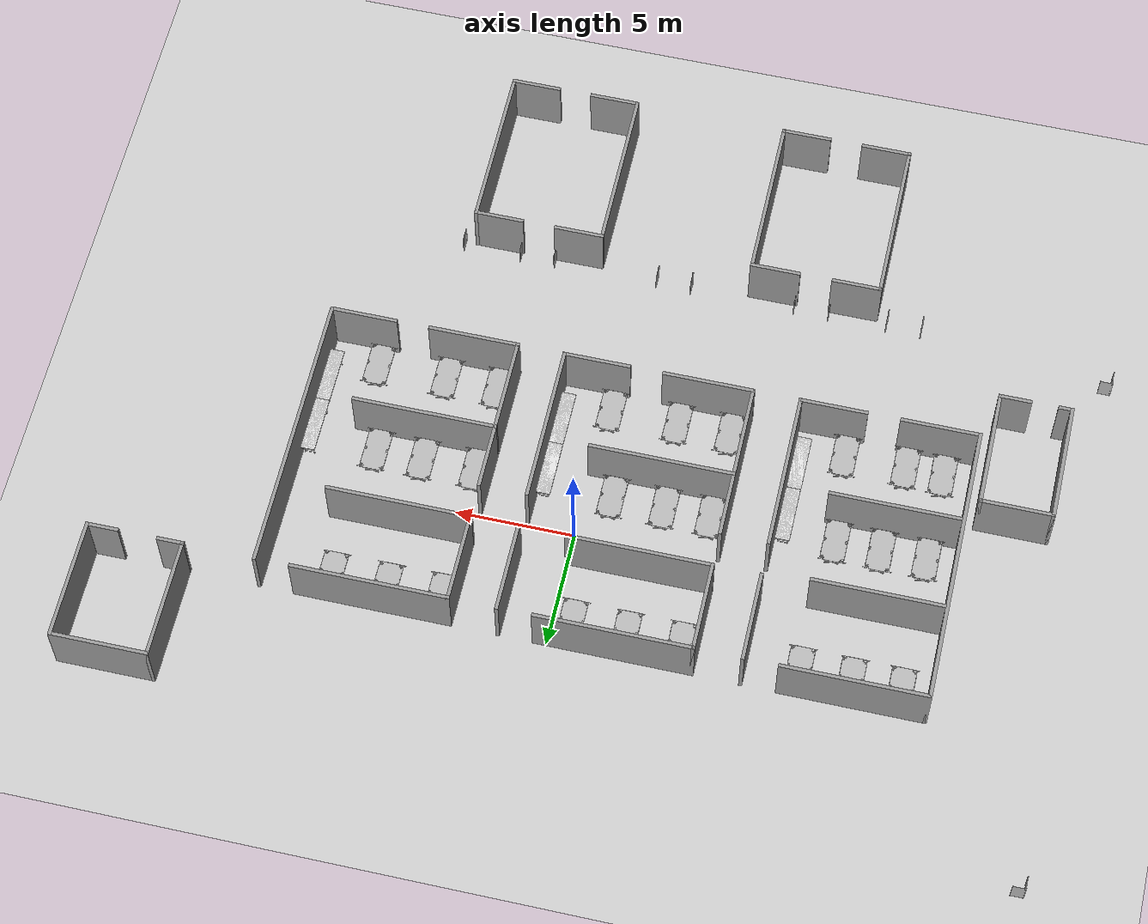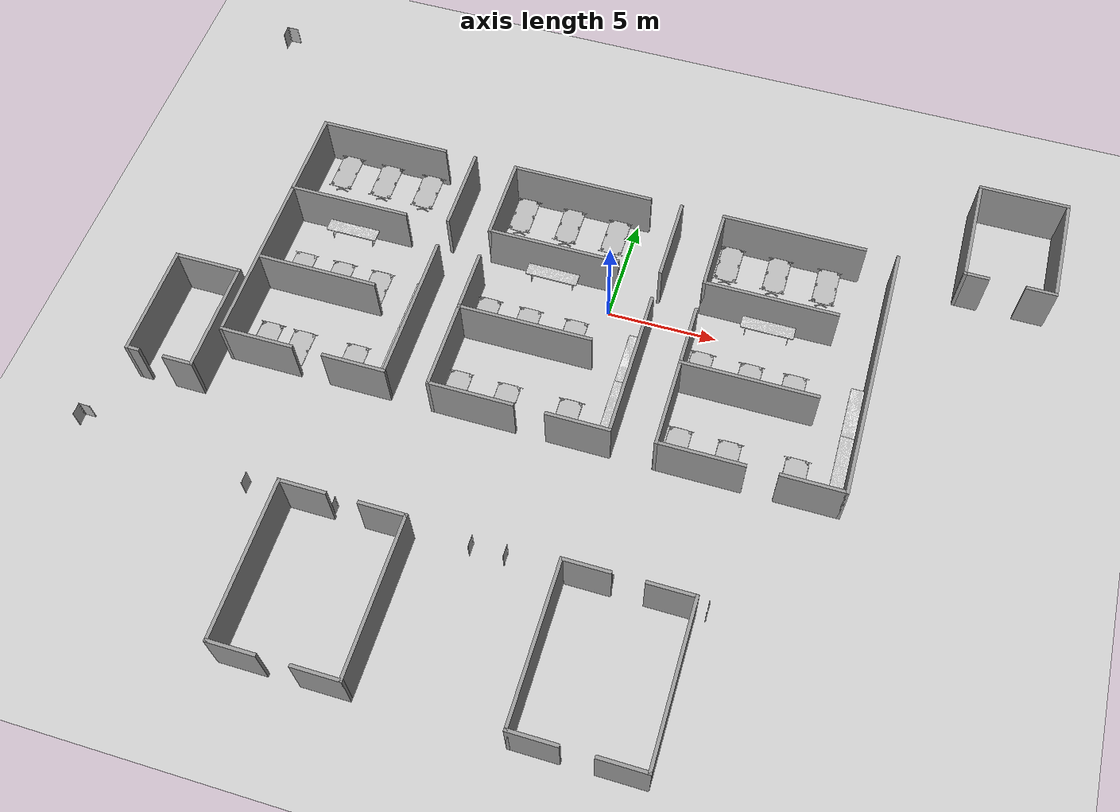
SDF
<sdf version="1.6">
 <world name="default">
  <light name="sun" type="directional">
   <pose>0 0 10 0 -0 0</pose>
   <diffuse>0.8 0.8 0.8 1</diffuse>
   <specular>0.1 0.1 0.1 1</specular>
   <attenuation>
    <range>1000</range>
    <constant>0.9</constant>
    <linear>0.01</linear>
    <quadratic>0.001</quadratic>
   </attenuation>
   <direction>-0.5 0.5 -1</direction>
  </light>
  <model name="ground_plane">
   <static>1</static>
   <link name="link">
    <collision name="collision">
     <geometry><plane><normal>0 0 1</normal><size>100 100</size></plane></geometry>
     <surface><friction><ode><mu>100</mu><mu2>50</mu2></ode></friction></surface>
    </collision>
    <visual name="visual">
     <cast_shadows>0</cast_shadows>
     <geometry><plane><normal>0 0 1</normal><size>100 100</size></plane></geometry>
     <material>
      <script><uri>file://media/materials/scripts/gazebo.material</uri><name>Gazebo/Grey</name></script>
     </material>
    </visual>
   </link>
  </model>
  <gravity>0 0 -9.8</gravity>
  <magnetic_field>6e-06 2.3e-05 -4.2e-05</magnetic_field>
  <atmosphere type="adiabatic"/>
  <physics name="default_physics" default="0" type="ode">
   <max_step_size>0.001</max_step_size>
   <real_time_factor>1</real_time_factor>
   <real_time_update_rate>1000</real_time_update_rate>
  </physics>
  <scene><ambient>0.4 0.4 0.4 1</ambient><background>0.7 0.7 0.7 1</background><shadows>1</shadows></scene>
  <spherical_coordinates>
   <surface_model>EARTH_WGS84</surface_model>
   <latitude_deg>0</latitude_deg>
   <longitude_deg>0</longitude_deg>
   <elevation>0</elevation>
   <heading_deg>0</heading_deg>
  </spherical_coordinates>
  <model name="cot">
   <pose>-14.9811 5.50055 0.1 0 0 -1.5708</pose>
   <static>1</static>
   <link name="body">
    <collision name="body">
     <geometry><mesh><uri>model://cot/meshes/cot.stl</uri><scale>1 1 1</scale></mesh></geometry>
    </collision>
    <visual name="visual">
     <geometry><mesh><uri>model://cot/meshes/cot.dae</uri><scale>1 1 1</scale></mesh></geometry>
    </visual>
   </link>
  </model>
  <model name="cot_clone">
   <pose>-12.9527 5.49728 0.1 0 0 -1.5708</pose>
   <static>1</static>
   <link name="body">
    <collision name="body">
     <geometry><mesh><uri>model://cot/meshes/cot.stl</uri><scale>1 1 1</scale></mesh></geometry>
    </collision>
    <visual name="visual">
     <geometry><mesh><uri>model://cot/meshes/cot.dae</uri><scale>1 1 1</scale></mesh></geometry>
    </visual>
   </link>
  </model>
  <model name="cot_clone_0">
   <pose>-10.8332 5.4804 0.1 0 0 -1.5708</pose>
   <static>1</static>
   <link name="body">
    <collision name="body">
     <geometry><mesh><uri>model://cot/meshes/cot.stl</uri><scale>1 1 1</scale></mesh></geometry>
    </collision>
    <visual name="visual">
     <geometry><mesh><uri>model://cot/meshes/cot.dae</uri><scale>1 1 1</scale></mesh></geometry>
    </visual>
   </link>
  </model>
  <model name="cot_clone_1">
   <pose>-14.9768 -0.452277 0.1 0 0 -1.5708</pose>
   <static>1</static>
   <link name="body">
    <collision name="body">
     <geometry><mesh><uri>model://cot/meshes/cot.stl</uri><scale>1 1 1</scale></mesh></geometry>
    </collision>
    <visual name="visual">
     <geometry><mesh><uri>model://cot/meshes/cot.dae</uri><scale>1 1 1</scale></mesh></geometry>
    </visual>
   </link>
  </model>
  <model name="cot_clone_2">
   <pose>-13.08 -0.439645 0.1 0 0 -1.5708</pose>
   <static>1</static>
   <link name="body">
    <collision name="body">
     <geometry><mesh><uri>model://cot/meshes/cot.stl</uri><scale>1 1 1</scale></mesh></geometry>
    </collision>
    <visual name="visual">
     <geometry><mesh><uri>model://cot/meshes/cot.dae</uri><scale>1 1 1</scale></mesh></geometry>
    </visual>
   </link>
  </model>
  <model name="cot_clone_3">
   <pose>-11.1982 -0.445731 0.1 0 0 -1.5708</pose>
   <static>1</static>
   <link name="body">
    <collision name="body">
     <geometry><mesh><uri>model://cot/meshes/cot.stl</uri><scale>1 1 1</scale></mesh></geometry>
    </collision>
    <visual name="visual">
     <geometry><mesh><uri>model://cot/meshes/cot.dae</uri><scale>1 1 1</scale></mesh></geometry>
    </visual>
   </link>
  </model>
  <model name="cot_clone_4">
   <pose>-14.973 -4.43674 0.1 0 0 -1.5708</pose>
   <static>1</static>
   <link name="body">
    <collision name="body">
     <geometry><mesh><uri>model://cot/meshes/cot.stl</uri><scale>1 1 1</scale></mesh></geometry>
    </collision>
    <visual name="visual">
     <geometry><mesh><uri>model://cot/meshes/cot.dae</uri><scale>1 1 1</scale></mesh></geometry>
    </visual>
   </link>
  </model>
  <model name="cot_clone_5">
   <pose>-13.4 -4.46277 0.1 0 0 -1.5708</pose>
   <static>1</static>
   <link name="body">
    <collision name="body">
     <geometry><mesh><uri>model://cot/meshes/cot.stl</uri><scale>1 1 1</scale></mesh></geometry>
    </collision>
    <visual name="visual">
     <geometry><mesh><uri>model://cot/meshes/cot.dae</uri><scale>1 1 1</scale></mesh></geometry>
    </visual>
   </link>
  </model>
  <model name="cot_clone_6">
   <pose>-10.8255 -4.45374 0.1 0 0 -1.5708</pose>
   <static>1</static>
   <link name="body">
    <collision name="body">
     <geometry><mesh><uri>model://cot/meshes/cot.stl</uri><scale>1 1 1</scale></mesh></geometry>
    </collision>
    <visual name="visual">
     <geometry><mesh><uri>model://cot/meshes/cot.dae</uri><scale>1 1 1</scale></mesh></geometry>
    </visual>
   </link>
  </model>
  <model name="cot_clone_7">
   <pose>-5.95946 5.46312 0.1 0 0 -1.5708</pose>
   <static>1</static>
   <link name="body">
    <collision name="body">
     <geometry><mesh><uri>model://cot/meshes/cot.stl</uri><scale>1 1 1</scale></mesh></geometry>
    </collision>
    <visual name="visual">
     <geometry><mesh><uri>model://cot/meshes/cot.dae</uri><scale>1 1 1</scale></mesh></geometry>
    </visual>
   </link>
  </model>
  <model name="cot_clone_8">
   <pose>-3.7045 5.46598 0.1 0 0 -1.5708</pose>
   <static>1</static>
   <link name="body">
    <collision name="body">
     <geometry><mesh><uri>model://cot/meshes/cot.stl</uri><scale>1 1 1</scale></mesh></geometry>
    </collision>
    <visual name="visual">
     <geometry><mesh><uri>model://cot/meshes/cot.dae</uri><scale>1 1 1</scale></mesh></geometry>
    </visual>
   </link>
  </model>
  <model name="cot_clone_9">
   <pose>-1.45201 5.44819 0.1 0 0 -1.5708</pose>
   <static>1</static>
   <link name="body">
    <collision name="body">
     <geometry><mesh><uri>model://cot/meshes/cot.stl</uri><scale>1 1 1</scale></mesh></geometry>
    </collision>
    <visual name="visual">
     <geometry><mesh><uri>model://cot/meshes/cot.dae</uri><scale>1 1 1</scale></mesh></geometry>
    </visual>
   </link>
  </model>
  <model name="cot_clone_10">
   <pose>-5.9537 -0.41929 0.1 0 0 -1.5708</pose>
   <static>1</static>
   <link name="body">
    <collision name="body">
     <geometry><mesh><uri>model://cot/meshes/cot.stl</uri><scale>1 1 1</scale></mesh></geometry>
    </collision>
    <visual name="visual">
     <geometry><mesh><uri>model://cot/meshes/cot.dae</uri><scale>1 1 1</scale></mesh></geometry>
    </visual>
   </link>
  </model>
  <model name="cot_clone_11">
   <pose>-4.01982 -0.428355 0.1 0 0 -1.5708</pose>
   <static>1</static>
   <link name="body">
    <collision name="body">
     <geometry><mesh><uri>model://cot/meshes/cot.stl</uri><scale>1 1 1</scale></mesh></geometry>
    </collision>
    <visual name="visual">
     <geometry><mesh><uri>model://cot/meshes/cot.dae</uri><scale>1 1 1</scale></mesh></geometry>
    </visual>
   </link>
  </model>
  <model name="cot_clone_12">
   <pose>-1.82184 -0.443345 0.1 0 0 -1.5708</pose>
   <static>1</static>
   <link name="body">
    <collision name="body">
     <geometry><mesh><uri>model://cot/meshes/cot.stl</uri><scale>1 1 1</scale></mesh></geometry>
    </collision>
    <visual name="visual">
     <geometry><mesh><uri>model://cot/meshes/cot.dae</uri><scale>1 1 1</scale></mesh></geometry>
    </visual>
   </link>
  </model>
  <model name="cot_clone_13">
   <pose>-5.95607 -4.4286 0.1 0 0 -1.5708</pose>
   <static>1</static>
   <link name="body">
    <collision name="body">
     <geometry><mesh><uri>model://cot/meshes/cot.stl</uri><scale>1 1 1</scale></mesh></geometry>
    </collision>
    <visual name="visual">
     <geometry><mesh><uri>model://cot/meshes/cot.dae</uri><scale>1 1 1</scale></mesh></geometry>
    </visual>
   </link>
  </model>
  <model name="cot_clone_14">
   <pose>-3.72043 -4.44398 0.1 0 0 -1.5708</pose>
   <static>1</static>
   <link name="body">
    <collision name="body">
     <geometry><mesh><uri>model://cot/meshes/cot.stl</uri><scale>1 1 1</scale></mesh></geometry>
    </collision>
    <visual name="visual">
     <geometry><mesh><uri>model://cot/meshes/cot.dae</uri><scale>1 1 1</scale></mesh></geometry>
    </visual>
   </link>
  </model>
  <model name="cot_clone_15">
   <pose>-0.888675 -4.42918 0.1 0 0 -1.5708</pose>
   <static>1</static>
   <link name="body">
    <collision name="body">
     <geometry><mesh><uri>model://cot/meshes/cot.stl</uri><scale>1 1 1</scale></mesh></geometry>
    </collision>
    <visual name="visual">
     <geometry><mesh><uri>model://cot/meshes/cot.dae</uri><scale>1 1 1</scale></mesh></geometry>
    </visual>
   </link>
  </model>
  <model name="cot_clone_16">
   <pose>4.0211 5.47722 0.1 0 0 -1.5708</pose>
   <static>1</static>
   <link name="body">
    <collision name="body">
     <geometry><mesh><uri>model://cot/meshes/cot.stl</uri><scale>1 1 1</scale></mesh></geometry>
    </collision>
    <visual name="visual">
     <geometry><mesh><uri>model://cot/meshes/cot.dae</uri><scale>1 1 1</scale></mesh></geometry>
    </visual>
   </link>
  </model>
  <model name="cot_clone_17">
   <pose>6.27241 5.48294 0.1 0 0 -1.5708</pose>
   <static>1</static>
   <link name="body">
    <collision name="body">
     <geometry><mesh><uri>model://cot/meshes/cot.stl</uri><scale>1 1 1</scale></mesh></geometry>
    </collision>
    <visual name="visual">
     <geometry><mesh><uri>model://cot/meshes/cot.dae</uri><scale>1 1 1</scale></mesh></geometry>
    </visual>
   </link>
  </model>
  <model name="cot_clone_18">
   <pose>8.58441 5.49005 0.1 0 0 -1.5708</pose>
   <static>1</static>
   <link name="body">
    <collision name="body">
     <geometry><mesh><uri>model://cot/meshes/cot.stl</uri><scale>1 1 1</scale></mesh></geometry>
    </collision>
    <visual name="visual">
     <geometry><mesh><uri>model://cot/meshes/cot.dae</uri><scale>1 1 1</scale></mesh></geometry>
    </visual>
   </link>
  </model>
  <model name="cot_clone_19">
   <pose>4.02772 -0.451978 0.1 0 0 -1.5708</pose>
   <static>1</static>
   <link name="body">
    <collision name="body">
     <geometry><mesh><uri>model://cot/meshes/cot.stl</uri><scale>1 1 1</scale></mesh></geometry>
    </collision>
    <visual name="visual">
     <geometry><mesh><uri>model://cot/meshes/cot.dae</uri><scale>1 1 1</scale></mesh></geometry>
    </visual>
   </link>
  </model>
  <model name="cot_clone_20">
   <pose>6.26482 -0.44706 0.1 0 0 -1.5708</pose>
   <static>1</static>
   <link name="body">
    <collision name="body">
     <geometry><mesh><uri>model://cot/meshes/cot.stl</uri><scale>1 1 1</scale></mesh></geometry>
    </collision>
    <visual name="visual">
     <geometry><mesh><uri>model://cot/meshes/cot.dae</uri><scale>1 1 1</scale></mesh></geometry>
    </visual>
   </link>
  </model>
  <model name="cot_clone_21">
   <pose>8.24769 -0.446592 0.1 0 0 -1.5708</pose>
   <static>1</static>
   <link name="body">
    <collision name="body">
     <geometry><mesh><uri>model://cot/meshes/cot.stl</uri><scale>1 1 1</scale></mesh></geometry>
    </collision>
    <visual name="visual">
     <geometry><mesh><uri>model://cot/meshes/cot.dae</uri><scale>1 1 1</scale></mesh></geometry>
    </visual>
   </link>
  </model>
  <model name="cot_clone_22">
   <pose>4.03249 -4.42697 0.1 0 0 -1.5708</pose>
   <static>1</static>
   <link name="body">
    <collision name="body">
     <geometry><mesh><uri>model://cot/meshes/cot.stl</uri><scale>1 1 1</scale></mesh></geometry>
    </collision>
    <visual name="visual">
     <geometry><mesh><uri>model://cot/meshes/cot.dae</uri><scale>1 1 1</scale></mesh></geometry>
    </visual>
   </link>
  </model>
  <model name="cot_clone_23">
   <pose>6.23645 -4.44769 0.1 0 0 -1.5708</pose>
   <static>1</static>
   <link name="body">
    <collision name="body">
     <geometry><mesh><uri>model://cot/meshes/cot.stl</uri><scale>1 1 1</scale></mesh></geometry>
    </collision>
    <visual name="visual">
     <geometry><mesh><uri>model://cot/meshes/cot.dae</uri><scale>1 1 1</scale></mesh></geometry>
    </visual>
   </link>
  </model>
  <model name="cot_clone_24">
   <pose>9.17787 -4.4333 0.1 0 0 -1.5708</pose>
   <static>1</static>
   <link name="body">
    <collision name="body">
     <geometry><mesh><uri>model://cot/meshes/cot.stl</uri><scale>1 1 1</scale></mesh></geometry>
    </collision>
    <visual name="visual">
     <geometry><mesh><uri>model://cot/meshes/cot.dae</uri><scale>1 1 1</scale></mesh></geometry>
    </visual>
   </link>
  </model>
  <model name="table_0">
   <pose>-13.8809 0.301038 0 0 -0 0</pose>
   <static>1</static>
   <link name="body">
    <collision name="body">
     <geometry><mesh><uri>model://table/meshes/table.stl</uri><scale>1 1 1</scale></mesh></geometry>
    </collision>
    <visual name="visual">
     <geometry><mesh><uri>model://table/meshes/table.dae</uri><scale>1 1 1</scale></mesh></geometry>
    </visual>
   </link>
  </model>
  <model name="table_0_clone">
   <pose>-4.1673 0.555884 0 0 -0 0</pose>
   <static>1</static>
   <link name="body">
    <collision name="body">
     <geometry><mesh><uri>model://table/meshes/table.stl</uri><scale>1 1 1</scale></mesh></geometry>
    </collision>
    <visual name="visual">
     <geometry><mesh><uri>model://table/meshes/table.dae</uri><scale>1 1 1</scale></mesh></geometry>
    </visual>
   </link>
  </model>
  <model name="table_0_clone_0">
   <pose>5.94093 0.543163 0 0 -0 0</pose>
   <static>1</static>
   <link name="body">
    <collision name="body">
     <geometry><mesh><uri>model://table/meshes/table.stl</uri><scale>1 1 1</scale></mesh></geometry>
    </collision>
    <visual name="visual">
     <geometry><mesh><uri>model://table/meshes/table.dae</uri><scale>1 1 1</scale></mesh></geometry>
    </visual>
   </link>
  </model>
  <model name="table_1">
   <pose>-8.72463 -3.81029 0 0 0 -1.5708</pose>
   <static>1</static>
   <link name="body">
    <collision name="body">
     <geometry><mesh><uri>model://table/meshes/table.stl</uri><scale>1 1 1</scale></mesh></geometry>
    </collision>
    <visual name="visual">
     <geometry><mesh><uri>model://table/meshes/table.dae</uri><scale>1 1 1</scale></mesh></geometry>
    </visual>
   </link>
  </model>
  <model name="table_1_clone">
   <pose>-8.71425 -1.37003 0 0 0 -1.5708</pose>
   <static>1</static>
   <link name="body">
    <collision name="body">
     <geometry><mesh><uri>model://table/meshes/table.stl</uri><scale>1 1 1</scale></mesh></geometry>
    </collision>
    <visual name="visual">
     <geometry><mesh><uri>model://table/meshes/table.dae</uri><scale>1 1 1</scale></mesh></geometry>
    </visual>
   </link>
  </model>
  <model name="table_1_clone_0">
   <pose>1.31419 -3.71854 0 0 0 -1.5708</pose>
   <static>1</static>
   <link name="body">
    <collision name="body">
     <geometry><mesh><uri>model://table/meshes/table.stl</uri><scale>1 1 1</scale></mesh></geometry>
    </collision>
    <visual name="visual">
     <geometry><mesh><uri>model://table/meshes/table.dae</uri><scale>1 1 1</scale></mesh></geometry>
    </visual>
   </link>
  </model>
  <model name="table_1_clone_1">
   <pose>1.31747 -1.3018 0 0 0 -1.5708</pose>
   <static>1</static>
   <link name="body">
    <collision name="body">
     <geometry><mesh><uri>model://table/meshes/table.stl</uri><scale>1 1 1</scale></mesh></geometry>
    </collision>
    <visual name="visual">
     <geometry><mesh><uri>model://table/meshes/table.dae</uri><scale>1 1 1</scale></mesh></geometry>
    </visual>
   </link>
  </model>
  <model name="table_1_clone_2">
   <pose>11.3236 -3.6078 0 0 0 -1.5708</pose>
   <static>1</static>
   <link name="body">
    <collision name="body">
     <geometry><mesh><uri>model://table/meshes/table.stl</uri><scale>1 1 1</scale></mesh></geometry>
    </collision>
    <visual name="visual">
     <geometry><mesh><uri>model://table/meshes/table.dae</uri><scale>1 1 1</scale></mesh></geometry>
    </visual>
   </link>
  </model>
  <model name="table_1_clone_3">
   <pose>11.3257 -1.17916 0 0 0 -1.5708</pose>
   <static>1</static>
   <link name="body">
    <collision name="body">
     <geometry><mesh><uri>model://table/meshes/table.stl</uri><scale>1 1 1</scale></mesh></geometry>
    </collision>
    <visual name="visual">
     <geometry><mesh><uri>model://table/meshes/table.dae</uri><scale>1 1 1</scale></mesh></geometry>
    </visual>
   </link>
  </model>
  <model name="fence_mini">
   <pose>-20.0681 10.05 0 0 -0 1.5707</pose>
   <static>1</static>
   <link name="body">
    <collision name="body">
     <geometry><mesh><uri>model://fence_mini/meshes/Tenax+1x_5.dae</uri></mesh></geometry>
    </collision>
    <visual name="visual">
     <geometry><mesh><uri>model://fence_mini/meshes/Tenax+1x_5.dae</uri></mesh></geometry>
    </visual>
   </link>
  </model>
  <model name="fence_mini_0">
   <pose>-21.4 11.068 0 0 -0 0</pose>
   <static>1</static>
   <link name="body">
    <collision name="body">
     <geometry><mesh><uri>model://fence_mini/meshes/Tenax+1x_5.dae</uri></mesh></geometry>
    </collision>
    <visual name="visual">
     <geometry><mesh><uri>model://fence_mini/meshes/Tenax+1x_5.dae</uri></mesh></geometry>
    </visual>
   </link>
  </model>
  <model name="fence_mini_1">
   <pose>-21.44 -11.93 0 0 -0 0</pose>
   <static>1</static>
   <link name="body">
    <collision name="body">
     <geometry><mesh><uri>model://fence_mini/meshes/Tenax+1x_5.dae</uri></mesh></geometry>
    </collision>
    <visual name="visual">
     <geometry><mesh><uri>model://fence_mini/meshes/Tenax+1x_5.dae</uri></mesh></geometry>
    </visual>
   </link>
  </model>
  <model name="fence_mini_2">
   <pose>-20.08 -12.9474 0 0 -0 1.5707</pose>
   <static>1</static>
   <link name="body">
    <collision name="body">
     <geometry><mesh><uri>model://fence_mini/meshes/Tenax+1x_5.dae</uri></mesh></geometry>
    </collision>
    <visual name="visual">
     <geometry><mesh><uri>model://fence_mini/meshes/Tenax+1x_5.dae</uri></mesh></geometry>
    </visual>
   </link>
  </model>
  <model name="fence_mini_3">
   <pose>-11.8181 -13.9103 0 0 -0 1.5707</pose>
   <static>1</static>
   <link name="body">
    <collision name="body">
     <geometry><mesh><uri>model://fence_mini/meshes/Tenax+1x_5.dae</uri></mesh></geometry>
    </collision>
    <visual name="visual">
     <geometry><mesh><uri>model://fence_mini/meshes/Tenax+1x_5.dae</uri></mesh></geometry>
    </visual>
   </link>
  </model>
  <model name="fence_mini_3_clone">
   <pose>-10.3181 -13.9103 0 0 -0 1.5707</pose>
   <static>1</static>
   <link name="body">
    <collision name="body">
     <geometry><mesh><uri>model://fence_mini/meshes/Tenax+1x_5.dae</uri></mesh></geometry>
    </collision>
    <visual name="visual">
     <geometry><mesh><uri>model://fence_mini/meshes/Tenax+1x_5.dae</uri></mesh></geometry>
    </visual>
   </link>
  </model>
  <model name="fence_mini_3_clone_0">
   <pose>-7.81812 -13.9103 0 0 -0 1.5707</pose>
   <static>1</static>
   <link name="body">
    <collision name="body">
     <geometry><mesh><uri>model://fence_mini/meshes/Tenax+1x_5.dae</uri></mesh></geometry>
    </collision>
    <visual name="visual">
     <geometry><mesh><uri>model://fence_mini/meshes/Tenax+1x_5.dae</uri></mesh></geometry>
    </visual>
   </link>
  </model>
  <model name="fence_mini_3_clone_1">
   <pose>-6.31812 -13.9103 0 0 -0 1.5707</pose>
   <static>1</static>
   <link name="body">
    <collision name="body">
     <geometry><mesh><uri>model://fence_mini/meshes/Tenax+1x_5.dae</uri></mesh></geometry>
    </collision>
    <visual name="visual">
     <geometry><mesh><uri>model://fence_mini/meshes/Tenax+1x_5.dae</uri></mesh></geometry>
    </visual>
   </link>
  </model>
  <model name="fence_mini_3_clone_2">
   <pose>-1.81812 -13.9103 0 0 -0 1.5707</pose>
   <static>1</static>
   <link name="body">
    <collision name="body">
     <geometry><mesh><uri>model://fence_mini/meshes/Tenax+1x_5.dae</uri></mesh></geometry>
    </collision>
    <visual name="visual">
     <geometry><mesh><uri>model://fence_mini/meshes/Tenax+1x_5.dae</uri></mesh></geometry>
    </visual>
   </link>
  </model>
  <model name="fence_mini_3_clone_3">
   <pose>-0.318119 -13.9103 0 0 -0 1.5707</pose>
   <static>1</static>
   <link name="body">
    <collision name="body">
     <geometry><mesh><uri>model://fence_mini/meshes/Tenax+1x_5.dae</uri></mesh></geometry>
    </collision>
    <visual name="visual">
     <geometry><mesh><uri>model://fence_mini/meshes/Tenax+1x_5.dae</uri></mesh></geometry>
    </visual>
   </link>
  </model>
  <model name="fence_mini_3_clone_4">
   <pose>4.18188 -13.9103 0 0 -0 1.5707</pose>
   <static>1</static>
   <link name="body">
    <collision name="body">
     <geometry><mesh><uri>model://fence_mini/meshes/Tenax+1x_5.dae</uri></mesh></geometry>
    </collision>
    <visual name="visual">
     <geometry><mesh><uri>model://fence_mini/meshes/Tenax+1x_5.dae</uri></mesh></geometry>
    </visual>
   </link>
  </model>
  <model name="fence_mini_3_clone_5">
   <pose>5.68188 -13.9103 0 0 -0 1.5707</pose>
   <static>1</static>
   <link name="body">
    <collision name="body">
     <geometry><mesh><uri>model://fence_mini/meshes/Tenax+1x_5.dae</uri></mesh></geometry>
    </collision>
    <visual name="visual">
     <geometry><mesh><uri>model://fence_mini/meshes/Tenax+1x_5.dae</uri></mesh></geometry>
    </visual>
   </link>
  </model>
  <model name="fence_mini_3_clone_6">
   <pose>8.18188 -13.9103 0 0 -0 1.5707</pose>
   <static>1</static>
   <link name="body">
    <collision name="body">
     <geometry><mesh><uri>model://fence_mini/meshes/Tenax+1x_5.dae</uri></mesh></geometry>
    </collision>
    <visual name="visual">
     <geometry><mesh><uri>model://fence_mini/meshes/Tenax+1x_5.dae</uri></mesh></geometry>
    </visual>
   </link>
  </model>
  <model name="tents_big">
   <pose>0 -5 0 0 -0 0</pose>
   <link name="Wall_10">
    <collision name="Wall_10_Collision">
     <geometry><box><size>3.15 0.15 2.5</size></box></geometry>
     <pose>0 0 1.25 0 -0 0</pose>
    </collision>
    <visual name="Wall_10_Visual">
     <pose>0 0 1.25 0 -0 0</pose>
     <geometry><box><size>3.15 0.15 2.5</size></box></geometry>
     <material>
      <script><uri>file://media/materials/scripts/gazebo.material</uri><name>Gazebo/Grey</name></script>
      <ambient>1 1 1 1</ambient>
     </material>
     <meta><layer>0</layer></meta>
    </visual>
    <pose>-17.5 1 0 0 -0 0</pose>
   </link>
   <link name="Wall_11">
    <collision name="Wall_11_Collision">
     <geometry><box><size>5.15 0.15 2.5</size></box></geometry>
     <pose>0 0 1.25 0 -0 0</pose>
    </collision>
    <visual name="Wall_11_Visual">
     <pose>0 0 1.25 0 -0 0</pose>
     <geometry><box><size>5.15 0.15 2.5</size></box></geometry>
     <material>
      <script><uri>file://media/materials/scripts/gazebo.material</uri><name>Gazebo/Grey</name></script>
      <ambient>1 1 1 1</ambient>
     </material>
     <meta><layer>0</layer></meta>
    </visual>
    <pose>-16 -1.5 0 0 -0 -1.5708</pose>
   </link>
   <link name="Wall_12">
    <collision name="Wall_12_Collision">
     <geometry><box><size>1.4 0.15 2.5</size></box></geometry>
     <pose>0 0 1.25 0 -0 0</pose>
    </collision>
    <visual name="Wall_12_Visual">
     <pose>0 0 1.25 0 -0 0</pose>
     <geometry><box><size>1.4 0.15 2.5</size></box></geometry>
     <material>
      <script><uri>file://media/materials/scripts/gazebo.material</uri><name>Gazebo/Grey</name></script>
      <ambient>1 1 1 1</ambient>
     </material>
     <meta><layer>0</layer></meta>
    </visual>
    <pose>-16.625 -4 0 0 -0 3.14159</pose>
   </link>
   <link name="Wall_14">
    <collision name="Wall_14_Collision">
     <geometry><box><size>3.4 0.15 2.5</size></box></geometry>
     <pose>0 0 1.25 0 -0 0</pose>
    </collision>
    <visual name="Wall_14_Visual">
     <pose>0 0 1.25 0 -0 0</pose>
     <geometry><box><size>3.4 0.15 2.5</size></box></geometry>
     <material>
      <script><uri>file://media/materials/scripts/gazebo.material</uri><name>Gazebo/Grey</name></script>
      <ambient>1 1 1 1</ambient>
     </material>
     <meta><layer>0</layer></meta>
    </visual>
    <pose>-13.875 -2 0 0 -0 3.14159</pose>
   </link>
   <link name="Wall_15">
    <collision name="Wall_15_Collision">
     <geometry><box><size>12.15 0.15 2.5</size></box></geometry>
     <pose>0 0 1.25 0 -0 0</pose>
    </collision>
    <visual name="Wall_15_Visual">
     <pose>0 0 1.25 0 -0 0</pose>
     <geometry><box><size>12.15 0.15 2.5</size></box></geometry>
     <material>
      <script><uri>file://media/materials/scripts/gazebo.material</uri><name>Gazebo/Grey</name></script>
      <ambient>1 1 1 1</ambient>
     </material>
     <meta><layer>0</layer></meta>
    </visual>
    <pose>-15.5 4 0 0 -0 1.5708</pose>
   </link>
   <link name="Wall_16">
    <collision name="Wall_16_Collision">
     <geometry><box><size>6.15 0.15 2.5</size></box></geometry>
     <pose>0 0 1.25 0 -0 0</pose>
    </collision>
    <visual name="Wall_16_Visual">
     <pose>0 0 1.25 0 -0 0</pose>
     <geometry><box><size>6.15 0.15 2.5</size></box></geometry>
     <material>
      <script><uri>file://media/materials/scripts/gazebo.material</uri><name>Gazebo/Grey</name></script>
      <ambient>1 1 1 1</ambient>
     </material>
     <meta><layer>0</layer></meta>
    </visual>
    <pose>-12.5 10 0 0 -0 0</pose>
   </link>
   <link name="Wall_18">
    <collision name="Wall_18_Collision">
     <geometry><box><size>3.9 0.15 2.5</size></box></geometry>
     <pose>0 0 1.25 0 -0 0</pose>
    </collision>
    <visual name="Wall_18_Visual">
     <pose>0 0 1.25 0 -0 0</pose>
     <geometry><box><size>3.9 0.15 2.5</size></box></geometry>
     <material>
      <script><uri>file://media/materials/scripts/gazebo.material</uri><name>Gazebo/Grey</name></script>
      <ambient>1 1 1 1</ambient>
     </material>
     <meta><layer>0</layer></meta>
    </visual>
    <pose>-8 8.125 0 0 -0 -1.5708</pose>
   </link>
   <link name="Wall_20">
    <collision name="Wall_20_Collision">
     <geometry><box><size>6.9 0.15 2.5</size></box></geometry>
     <pose>0 0 1.25 0 -0 0</pose>
    </collision>
    <visual name="Wall_20_Visual">
     <pose>0 0 1.25 0 -0 0</pose>
     <geometry><box><size>6.9 0.15 2.5</size></box></geometry>
     <material>
      <script><uri>file://media/materials/scripts/gazebo.material</uri><name>Gazebo/Grey</name></script>
      <ambient>1 1 1 1</ambient>
     </material>
     <meta><layer>0</layer></meta>
    </visual>
    <pose>-8 1.375 0 0 -0 -1.5708</pose>
   </link>
   <link name="Wall_21">
    <collision name="Wall_21_Collision">
     <geometry><box><size>2.9 0.15 2.5</size></box></geometry>
     <pose>0 0 1.25 0 -0 0</pose>
    </collision>
    <visual name="Wall_21_Visual">
     <pose>0 0 1.25 0 -0 0</pose>
     <geometry><box><size>2.9 0.15 2.5</size></box></geometry>
     <material>
      <script><uri>file://media/materials/scripts/gazebo.material</uri><name>Gazebo/Grey</name></script>
      <ambient>1 1 1 1</ambient>
     </material>
     <meta><layer>0</layer></meta>
    </visual>
    <pose>-9.375 -2 0 0 -0 3.14159</pose>
   </link>
   <link name="Wall_23">
    <collision name="Wall_23_Collision">
     <geometry><box><size>5.65 0.15 2.5</size></box></geometry>
     <pose>0 0 1.25 0 -0 0</pose>
    </collision>
    <visual name="Wall_23_Visual">
     <pose>0 0 1.25 0 -0 0</pose>
     <geometry><box><size>5.65 0.15 2.5</size></box></geometry>
     <material>
      <script><uri>file://media/materials/scripts/gazebo.material</uri><name>Gazebo/Grey</name></script>
      <ambient>1 1 1 1</ambient>
     </material>
     <meta><layer>0</layer></meta>
    </visual>
    <pose>-12.75 6 0 0 -0 0</pose>
   </link>
   <link name="Wall_26">
    <collision name="Wall_26_Collision">
     <geometry><box><size>5.65 0.15 2.5</size></box></geometry>
     <pose>0 0 1.25 0 -0 0</pose>
    </collision>
    <visual name="Wall_26_Visual">
     <pose>0 0 1.25 0 -0 0</pose>
     <geometry><box><size>5.65 0.15 2.5</size></box></geometry>
     <material>
      <script><uri>file://media/materials/scripts/gazebo.material</uri><name>Gazebo/Grey</name></script>
      <ambient>1 1 1 1</ambient>
     </material>
     <meta><layer>0</layer></meta>
    </visual>
    <pose>-12.75 2 0 0 -0 0</pose>
   </link>
   <link name="Wall_28">
    <collision name="Wall_28_Collision">
     <geometry><box><size>3.9 0.15 2.5</size></box></geometry>
     <pose>0 0 1.25 0 -0 0</pose>
    </collision>
    <visual name="Wall_28_Visual">
     <pose>0 0 1.25 0 -0 0</pose>
     <geometry><box><size>3.9 0.15 2.5</size></box></geometry>
     <material>
      <script><uri>file://media/materials/scripts/gazebo.material</uri><name>Gazebo/Grey</name></script>
      <ambient>1 1 1 1</ambient>
     </material>
     <meta><layer>0</layer></meta>
    </visual>
    <pose>-4.125 -2 0 0 -0 3.14159</pose>
   </link>
   <link name="Wall_29">
    <collision name="Wall_29_Collision">
     <geometry><box><size>6.9 0.15 2.5</size></box></geometry>
     <pose>0 0 1.25 0 -0 0</pose>
    </collision>
    <visual name="Wall_29_Visual">
     <pose>0 0 1.25 0 -0 0</pose>
     <geometry><box><size>6.9 0.15 2.5</size></box></geometry>
     <material>
      <script><uri>file://media/materials/scripts/gazebo.material</uri><name>Gazebo/Grey</name></script>
      <ambient>1 1 1 1</ambient>
     </material>
     <meta><layer>0</layer></meta>
    </visual>
    <pose>-6 1.375 0 0 -0 1.5708</pose>
   </link>
   <link name="Wall_31">
    <collision name="Wall_31_Collision">
     <geometry><box><size>3.9 0.15 2.5</size></box></geometry>
     <pose>0 0 1.25 0 -0 0</pose>
    </collision>
    <visual name="Wall_31_Visual">
     <pose>0 0 1.25 0 -0 0</pose>
     <geometry><box><size>3.9 0.15 2.5</size></box></geometry>
     <material>
      <script><uri>file://media/materials/scripts/gazebo.material</uri><name>Gazebo/Grey</name></script>
      <ambient>1 1 1 1</ambient>
     </material>
     <meta><layer>0</layer></meta>
    </visual>
    <pose>-6 8.125 0 0 -0 1.5708</pose>
   </link>
   <link name="Wall_32">
    <collision name="Wall_32_Collision">
     <geometry><box><size>6.65 0.15 2.5</size></box></geometry>
     <pose>0 0 1.25 0 -0 0</pose>
    </collision>
    <visual name="Wall_32_Visual">
     <pose>0 0 1.25 0 -0 0</pose>
     <geometry><box><size>6.65 0.15 2.5</size></box></geometry>
     <material>
      <script><uri>file://media/materials/scripts/gazebo.material</uri><name>Gazebo/Grey</name></script>
      <ambient>1 1 1 1</ambient>
     </material>
     <meta><layer>0</layer></meta>
    </visual>
    <pose>-2.75 10 0 0 -0 0</pose>
   </link>
   <link name="Wall_35">
    <collision name="Wall_35_Collision">
     <geometry><box><size>2.9 0.15 2.5</size></box></geometry>
     <pose>0 0 1.25 0 -0 0</pose>
    </collision>
    <visual name="Wall_35_Visual">
     <pose>0 0 1.25 0 -0 0</pose>
     <geometry><box><size>2.9 0.15 2.5</size></box></geometry>
     <material>
      <script><uri>file://media/materials/scripts/gazebo.material</uri><name>Gazebo/Grey</name></script>
      <ambient>1 1 1 1</ambient>
     </material>
     <meta><layer>0</layer></meta>
    </visual>
    <pose>0.625 -2 0 0 -0 3.14159</pose>
   </link>
   <link name="Wall_37">
    <collision name="Wall_37_Collision">
     <geometry><box><size>6.15 0.15 2.5</size></box></geometry>
     <pose>0 0 1.25 0 -0 0</pose>
    </collision>
    <visual name="Wall_37_Visual">
     <pose>0 0 1.25 0 -0 0</pose>
     <geometry><box><size>6.15 0.15 2.5</size></box></geometry>
     <material>
      <script><uri>file://media/materials/scripts/gazebo.material</uri><name>Gazebo/Grey</name></script>
      <ambient>1 1 1 1</ambient>
     </material>
     <meta><layer>0</layer></meta>
    </visual>
    <pose>-3 6.25 0 0 -0 0</pose>
   </link>
   <link name="Wall_39">
    <collision name="Wall_39_Collision">
     <geometry><box><size>6.15 0.15 2.5</size></box></geometry>
     <pose>0 0 1.25 0 -0 0</pose>
    </collision>
    <visual name="Wall_39_Visual">
     <pose>0 0 1.25 0 -0 0</pose>
     <geometry><box><size>6.15 0.15 2.5</size></box></geometry>
     <material>
      <script><uri>file://media/materials/scripts/gazebo.material</uri><name>Gazebo/Grey</name></script>
      <ambient>1 1 1 1</ambient>
     </material>
     <meta><layer>0</layer></meta>
    </visual>
    <pose>-3 2 0 0 -0 0</pose>
   </link>
   <link name="Wall_41">
    <collision name="Wall_41_Collision">
     <geometry><box><size>6.9 0.15 2.5</size></box></geometry>
     <pose>0 0 1.25 0 -0 0</pose>
    </collision>
    <visual name="Wall_41_Visual">
     <pose>0 0 1.25 0 -0 0</pose>
     <geometry><box><size>6.9 0.15 2.5</size></box></geometry>
     <material>
      <script><uri>file://media/materials/scripts/gazebo.material</uri><name>Gazebo/Grey</name></script>
      <ambient>1 1 1 1</ambient>
     </material>
     <meta><layer>0</layer></meta>
    </visual>
    <pose>2 1.375 0 0 -0 1.5708</pose>
   </link>
   <link name="Wall_43">
    <collision name="Wall_43_Collision">
     <geometry><box><size>3.9 0.15 2.5</size></box></geometry>
     <pose>0 0 1.25 0 -0 0</pose>
    </collision>
    <visual name="Wall_43_Visual">
     <pose>0 0 1.25 0 -0 0</pose>
     <geometry><box><size>3.9 0.15 2.5</size></box></geometry>
     <material>
      <script><uri>file://media/materials/scripts/gazebo.material</uri><name>Gazebo/Grey</name></script>
      <ambient>1 1 1 1</ambient>
     </material>
     <meta><layer>0</layer></meta>
    </visual>
    <pose>2 8.125 0 0 -0 1.5708</pose>
   </link>
   <link name="Wall_45">
    <collision name="Wall_45_Collision">
     <geometry><box><size>3.9 0.15 2.5</size></box></geometry>
     <pose>0 0 1.25 0 -0 0</pose>
    </collision>
    <visual name="Wall_45_Visual">
     <pose>0 0 1.25 0 -0 0</pose>
     <geometry><box><size>3.9 0.15 2.5</size></box></geometry>
     <material>
      <script><uri>file://media/materials/scripts/gazebo.material</uri><name>Gazebo/Grey</name></script>
      <ambient>1 1 1 1</ambient>
     </material>
     <meta><layer>0</layer></meta>
    </visual>
    <pose>4 8.125 0 0 -0 1.5708</pose>
   </link>
   <link name="Wall_46">
    <collision name="Wall_46_Collision">
     <geometry><box><size>6.65 0.15 2.5</size></box></geometry>
     <pose>0 0 1.25 0 -0 0</pose>
    </collision>
    <visual name="Wall_46_Visual">
     <pose>0 0 1.25 0 -0 0</pose>
     <geometry><box><size>6.65 0.15 2.5</size></box></geometry>
     <material>
      <script><uri>file://media/materials/scripts/gazebo.material</uri><name>Gazebo/Grey</name></script>
      <ambient>1 1 1 1</ambient>
     </material>
     <meta><layer>0</layer></meta>
    </visual>
    <pose>7.25 10 0 0 -0 0</pose>
   </link>
   <link name="Wall_48">
    <collision name="Wall_48_Collision">
     <geometry><box><size>6.9 0.15 2.5</size></box></geometry>
     <pose>0 0 1.25 0 -0 0</pose>
    </collision>
    <visual name="Wall_48_Visual">
     <pose>0 0 1.25 0 -0 0</pose>
     <geometry><box><size>6.9 0.15 2.5</size></box></geometry>
     <material>
      <script><uri>file://media/materials/scripts/gazebo.material</uri><name>Gazebo/Grey</name></script>
      <ambient>1 1 1 1</ambient>
     </material>
     <meta><layer>0</layer></meta>
    </visual>
    <pose>4 1.375 0 0 -0 -1.5708</pose>
   </link>
   <link name="Wall_49">
    <collision name="Wall_49_Collision">
     <geometry><box><size>3.9 0.15 2.5</size></box></geometry>
     <pose>0 0 1.25 0 -0 0</pose>
    </collision>
    <visual name="Wall_49_Visual">
     <pose>0 0 1.25 0 -0 0</pose>
     <geometry><box><size>3.9 0.15 2.5</size></box></geometry>
     <material>
      <script><uri>file://media/materials/scripts/gazebo.material</uri><name>Gazebo/Grey</name></script>
      <ambient>1 1 1 1</ambient>
     </material>
     <meta><layer>0</layer></meta>
    </visual>
    <pose>5.875 -2 0 0 -0 0</pose>
   </link>
   <link name="Wall_51">
    <collision name="Wall_51_Collision">
     <geometry><box><size>2.9 0.15 2.5</size></box></geometry>
     <pose>0 0 1.25 0 -0 0</pose>
    </collision>
    <visual name="Wall_51_Visual">
     <pose>0 0 1.25 0 -0 0</pose>
     <geometry><box><size>2.9 0.15 2.5</size></box></geometry>
     <material>
      <script><uri>file://media/materials/scripts/gazebo.material</uri><name>Gazebo/Grey</name></script>
      <ambient>1 1 1 1</ambient>
     </material>
     <meta><layer>0</layer></meta>
    </visual>
    <pose>10.625 -2 0 0 -0 0</pose>
   </link>
   <link name="Wall_52">
    <collision name="Wall_52_Collision">
     <geometry><box><size>12.15 0.15 2.5</size></box></geometry>
     <pose>0 0 1.25 0 -0 0</pose>
    </collision>
    <visual name="Wall_52_Visual">
     <pose>0 0 1.25 0 -0 0</pose>
     <geometry><box><size>12.15 0.15 2.5</size></box></geometry>
     <material>
      <script><uri>file://media/materials/scripts/gazebo.material</uri><name>Gazebo/Grey</name></script>
      <ambient>1 1 1 1</ambient>
     </material>
     <meta><layer>0</layer></meta>
    </visual>
    <pose>12 4 0 0 -0 1.5708</pose>
   </link>
   <link name="Wall_54">
    <collision name="Wall_54_Collision">
     <geometry><box><size>6.15 0.15 2.5</size></box></geometry>
     <pose>0 0 1.25 0 -0 0</pose>
    </collision>
    <visual name="Wall_54_Visual">
     <pose>0 0 1.25 0 -0 0</pose>
     <geometry><box><size>6.15 0.15 2.5</size></box></geometry>
     <material>
      <script><uri>file://media/materials/scripts/gazebo.material</uri><name>Gazebo/Grey</name></script>
      <ambient>1 1 1 1</ambient>
     </material>
     <meta><layer>0</layer></meta>
    </visual>
    <pose>7 2 0 0 -0 0</pose>
   </link>
   <link name="Wall_56">
    <collision name="Wall_56_Collision">
     <geometry><box><size>6.15 0.15 2.5</size></box></geometry>
     <pose>0 0 1.25 0 -0 0</pose>
    </collision>
    <visual name="Wall_56_Visual">
     <pose>0 0 1.25 0 -0 0</pose>
     <geometry><box><size>6.15 0.15 2.5</size></box></geometry>
     <material>
      <script><uri>file://media/materials/scripts/gazebo.material</uri><name>Gazebo/Grey</name></script>
      <ambient>1 1 1 1</ambient>
     </material>
     <meta><layer>0</layer></meta>
    </visual>
    <pose>7 6.25 0 0 -0 0</pose>
   </link>
   <link name="Wall_60">
    <collision name="Wall_60_Collision">
     <geometry><box><size>1.15 0.15 2.5</size></box></geometry>
     <pose>0 0 1.25 0 -0 0</pose>
    </collision>
    <visual name="Wall_60_Visual">
     <pose>0 0 1.25 0 -0 0</pose>
     <geometry><box><size>1.15 0.15 2.5</size></box></geometry>
     <material>
      <script><uri>file://media/materials/scripts/gazebo.material</uri><name>Gazebo/Grey</name></script>
      <ambient>1 1 1 1</ambient>
     </material>
     <meta><layer>0</layer></meta>
    </visual>
    <pose>15.5 10 0 0 -0 3.14159</pose>
   </link>
   <link name="Wall_61">
    <collision name="Wall_61_Collision">
     <geometry><box><size>5.15 0.15 2.5</size></box></geometry>
     <pose>0 0 1.25 0 -0 0</pose>
    </collision>
    <visual name="Wall_61_Visual">
     <pose>0 0 1.25 0 -0 0</pose>
     <geometry><box><size>5.15 0.15 2.5</size></box></geometry>
     <material>
      <script><uri>file://media/materials/scripts/gazebo.material</uri><name>Gazebo/Grey</name></script>
      <ambient>1 1 1 1</ambient>
     </material>
     <meta><layer>0</layer></meta>
    </visual>
    <pose>15 12.5 0 0 -0 1.5708</pose>
   </link>
   <link name="Wall_62">
    <collision name="Wall_62_Collision">
     <geometry><box><size>4.15 0.15 2.5</size></box></geometry>
     <pose>0 0 1.25 0 -0 0</pose>
    </collision>
    <visual name="Wall_62_Visual">
     <pose>0 0 1.25 0 -0 0</pose>
     <geometry><box><size>4.15 0.15 2.5</size></box></geometry>
     <material>
      <script><uri>file://media/materials/scripts/gazebo.material</uri><name>Gazebo/Grey</name></script>
      <ambient>1 1 1 1</ambient>
     </material>
     <meta><layer>0</layer></meta>
    </visual>
    <pose>17 15 0 0 -0 0</pose>
   </link>
   <link name="Wall_63">
    <collision name="Wall_63_Collision">
     <geometry><box><size>5.14984 0.15 2.5</size></box></geometry>
     <pose>0 0 1.25 0 -0 0</pose>
    </collision>
    <visual name="Wall_63_Visual">
     <pose>0 0 1.25 0 -0 0</pose>
     <geometry><box><size>5.14984 0.15 2.5</size></box></geometry>
     <material>
      <script><uri>file://media/materials/scripts/gazebo.material</uri><name>Gazebo/Grey</name></script>
      <ambient>1 1 1 1</ambient>
     </material>
     <meta><layer>0</layer></meta>
    </visual>
    <pose>19 12.5 0 0 -0 -1.5708</pose>
   </link>
   <link name="Wall_64">
    <collision name="Wall_64_Collision">
     <geometry><box><size>1.4 0.15 2.5</size></box></geometry>
     <pose>0 0 1.25 0 -0 0</pose>
    </collision>
    <visual name="Wall_64_Visual">
     <pose>0 0 1.25 0 -0 0</pose>
     <geometry><box><size>1.4 0.15 2.5</size></box></geometry>
     <material>
      <script><uri>file://media/materials/scripts/gazebo.material</uri><name>Gazebo/Grey</name></script>
      <ambient>1 1 1 1</ambient>
     </material>
     <meta><layer>0</layer></meta>
    </visual>
    <pose>18.375 10 0 0 -0 3.14159</pose>
   </link>
   <link name="Wall_69">
    <collision name="Wall_69_Collision">
     <geometry><box><size>2.15 0.15 2.5</size></box></geometry>
     <pose>0 0 1.25 0 -0 0</pose>
    </collision>
    <visual name="Wall_69_Visual">
     <pose>0 0 1.25 0 -0 0</pose>
     <geometry><box><size>2.15 0.15 2.5</size></box></geometry>
     <material>
      <script><uri>file://media/materials/scripts/gazebo.material</uri><name>Gazebo/Grey</name></script>
      <ambient>1 1 1 1</ambient>
     </material>
     <meta><layer>0</layer></meta>
    </visual>
    <pose>-9.25 -8 0 0 -0 3.14159</pose>
   </link>
   <link name="Wall_70">
    <collision name="Wall_70_Collision">
     <geometry><box><size>7.15 0.15 2.5</size></box></geometry>
     <pose>0 0 1.25 0 -0 0</pose>
    </collision>
    <visual name="Wall_70_Visual">
     <pose>0 0 1.25 0 -0 0</pose>
     <geometry><box><size>7.15 0.15 2.5</size></box></geometry>
     <material>
      <script><uri>file://media/materials/scripts/gazebo.material</uri><name>Gazebo/Grey</name></script>
      <ambient>1 1 1 1</ambient>
     </material>
     <meta><layer>0</layer></meta>
    </visual>
    <pose>-10.25 -11.5 0 0 -0 -1.5708</pose>
   </link>
   <link name="Wall_71">
    <collision name="Wall_71_Collision">
     <geometry><box><size>2.15 0.15 2.5</size></box></geometry>
     <pose>0 0 1.25 0 -0 0</pose>
    </collision>
    <visual name="Wall_71_Visual">
     <pose>0 0 1.25 0 -0 0</pose>
     <geometry><box><size>2.15 0.15 2.5</size></box></geometry>
     <material>
      <script><uri>file://media/materials/scripts/gazebo.material</uri><name>Gazebo/Grey</name></script>
      <ambient>1 1 1 1</ambient>
     </material>
     <meta><layer>0</layer></meta>
    </visual>
    <pose>-9.25 -15 0 0 -0 0</pose>
   </link>
   <link name="Wall_73">
    <collision name="Wall_73_Collision">
     <geometry><box><size>2.15 0.15 2.5</size></box></geometry>
     <pose>0 0 1.25 0 -0 0</pose>
    </collision>
    <visual name="Wall_73_Visual">
     <pose>0 0 1.25 0 -0 0</pose>
     <geometry><box><size>2.15 0.15 2.5</size></box></geometry>
     <material>
      <script><uri>file://media/materials/scripts/gazebo.material</uri><name>Gazebo/Grey</name></script>
      <ambient>1 1 1 1</ambient>
     </material>
     <meta><layer>0</layer></meta>
    </visual>
    <pose>-5.75 -8 0 0 -0 0</pose>
   </link>
   <link name="Wall_74">
    <collision name="Wall_74_Collision">
     <geometry><box><size>7.15 0.15 2.5</size></box></geometry>
     <pose>0 0 1.25 0 -0 0</pose>
    </collision>
    <visual name="Wall_74_Visual">
     <pose>0 0 1.25 0 -0 0</pose>
     <geometry><box><size>7.15 0.15 2.5</size></box></geometry>
     <material>
      <script><uri>file://media/materials/scripts/gazebo.material</uri><name>Gazebo/Grey</name></script>
      <ambient>1 1 1 1</ambient>
     </material>
     <meta><layer>0</layer></meta>
    </visual>
    <pose>-4.75 -11.5 0 0 -0 -1.5708</pose>
   </link>
   <link name="Wall_75">
    <collision name="Wall_75_Collision">
     <geometry><box><size>2.15 0.15 2.5</size></box></geometry>
     <pose>0 0 1.25 0 -0 0</pose>
    </collision>
    <visual name="Wall_75_Visual">
     <pose>0 0 1.25 0 -0 0</pose>
     <geometry><box><size>2.15 0.15 2.5</size></box></geometry>
     <material>
      <script><uri>file://media/materials/scripts/gazebo.material</uri><name>Gazebo/Grey</name></script>
      <ambient>1 1 1 1</ambient>
     </material>
     <meta><layer>0</layer></meta>
    </visual>
    <pose>-5.75 -15 0 0 -0 3.14159</pose>
   </link>
   <link name="Wall_78">
    <collision name="Wall_78_Collision">
     <geometry><box><size>2.15 0.15 2.5</size></box></geometry>
     <pose>0 0 1.25 0 -0 0</pose>
    </collision>
    <visual name="Wall_78_Visual">
     <pose>0 0 1.25 0 -0 0</pose>
     <geometry><box><size>2.15 0.15 2.5</size></box></geometry>
     <material>
      <script><uri>file://media/materials/scripts/gazebo.material</uri><name>Gazebo/Grey</name></script>
      <ambient>1 1 1 1</ambient>
     </material>
     <meta><layer>0</layer></meta>
    </visual>
    <pose>2.75 -8 0 0 -0 3.14159</pose>
   </link>
   <link name="Wall_79">
    <collision name="Wall_79_Collision">
     <geometry><box><size>7.15 0.15 2.5</size></box></geometry>
     <pose>0 0 1.25 0 -0 0</pose>
    </collision>
    <visual name="Wall_79_Visual">
     <pose>0 0 1.25 0 -0 0</pose>
     <geometry><box><size>7.15 0.15 2.5</size></box></geometry>
     <material>
      <script><uri>file://media/materials/scripts/gazebo.material</uri><name>Gazebo/Grey</name></script>
      <ambient>1 1 1 1</ambient>
     </material>
     <meta><layer>0</layer></meta>
    </visual>
    <pose>1.75 -11.5 0 0 -0 -1.5708</pose>
   </link>
   <link name="Wall_8">
    <collision name="Wall_8_Collision">
     <geometry><box><size>0.65 0.15 2.5</size></box></geometry>
     <pose>0 0 1.25 0 -0 0</pose>
    </collision>
    <visual name="Wall_8_Visual">
     <pose>0 0 1.25 0 -0 0</pose>
     <geometry><box><size>0.65 0.15 2.5</size></box></geometry>
     <material>
      <script><uri>file://media/materials/scripts/gazebo.material</uri><name>Gazebo/Grey</name></script>
      <ambient>1 1 1 1</ambient>
     </material>
     <meta><layer>0</layer></meta>
    </visual>
    <pose>-18.75 -4 0 0 -0 3.14159</pose>
   </link>
   <link name="Wall_80">
    <collision name="Wall_80_Collision">
     <geometry><box><size>2.15 0.15 2.5</size></box></geometry>
     <pose>0 0 1.25 0 -0 0</pose>
    </collision>
    <visual name="Wall_80_Visual">
     <pose>0 0 1.25 0 -0 0</pose>
     <geometry><box><size>2.15 0.15 2.5</size></box></geometry>
     <material>
      <script><uri>file://media/materials/scripts/gazebo.material</uri><name>Gazebo/Grey</name></script>
      <ambient>1 1 1 1</ambient>
     </material>
     <meta><layer>0</layer></meta>
    </visual>
    <pose>2.75 -15 0 0 -0 0</pose>
   </link>
   <link name="Wall_82">
    <collision name="Wall_82_Collision">
     <geometry><box><size>2.15 0.15 2.5</size></box></geometry>
     <pose>0 0 1.25 0 -0 0</pose>
    </collision>
    <visual name="Wall_82_Visual">
     <pose>0 0 1.25 0 -0 0</pose>
     <geometry><box><size>2.15 0.15 2.5</size></box></geometry>
     <material>
      <script><uri>file://media/materials/scripts/gazebo.material</uri><name>Gazebo/Grey</name></script>
      <ambient>1 1 1 1</ambient>
     </material>
     <meta><layer>0</layer></meta>
    </visual>
    <pose>6.25 -8 0 0 -0 0</pose>
   </link>
   <link name="Wall_83">
    <collision name="Wall_83_Collision">
     <geometry><box><size>7.15 0.15 2.5</size></box></geometry>
     <pose>0 0 1.25 0 -0 0</pose>
    </collision>
    <visual name="Wall_83_Visual">
     <pose>0 0 1.25 0 -0 0</pose>
     <geometry><box><size>7.15 0.15 2.5</size></box></geometry>
     <material>
      <script><uri>file://media/materials/scripts/gazebo.material</uri><name>Gazebo/Grey</name></script>
      <ambient>1 1 1 1</ambient>
     </material>
     <meta><layer>0</layer></meta>
    </visual>
    <pose>7.25 -11.5 0 0 -0 -1.5708</pose>
   </link>
   <link name="Wall_84">
    <collision name="Wall_84_Collision">
     <geometry><box><size>2.15 0.15 2.5</size></box></geometry>
     <pose>0 0 1.25 0 -0 0</pose>
    </collision>
    <visual name="Wall_84_Visual">
     <pose>0 0 1.25 0 -0 0</pose>
     <geometry><box><size>2.15 0.15 2.5</size></box></geometry>
     <material>
      <script><uri>file://media/materials/scripts/gazebo.material</uri><name>Gazebo/Grey</name></script>
      <ambient>1 1 1 1</ambient>
     </material>
     <meta><layer>0</layer></meta>
    </visual>
    <pose>6.25 -15 0 0 -0 3.14159</pose>
   </link>
   <link name="Wall_9">
    <collision name="Wall_9_Collision">
     <geometry><box><size>5.15 0.15 2.5</size></box></geometry>
     <pose>0 0 1.25 0 -0 0</pose>
    </collision>
    <visual name="Wall_9_Visual">
     <pose>0 0 1.25 0 -0 0</pose>
     <geometry><box><size>5.15 0.15 2.5</size></box></geometry>
     <material>
      <script><uri>file://media/materials/scripts/gazebo.material</uri><name>Gazebo/Grey</name></script>
      <ambient>1 1 1 1</ambient>
     </material>
     <meta><layer>0</layer></meta>
    </visual>
    <pose>-19 -1.5 0 0 -0 1.5708</pose>
   </link>
   <static>1</static>
  </model>
 </world>
</sdf>
